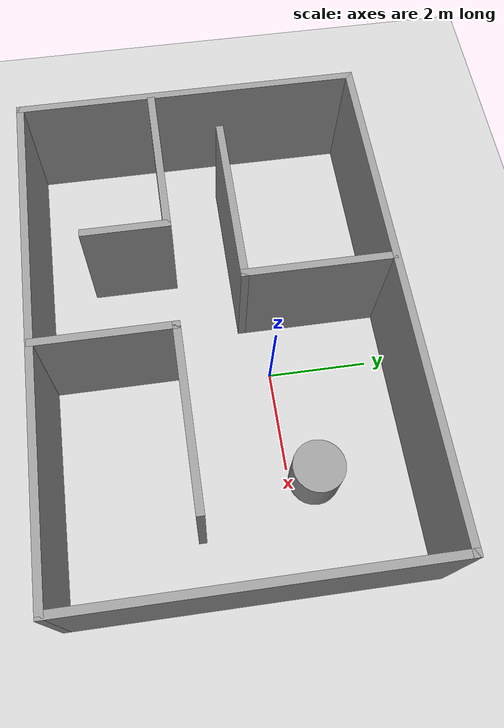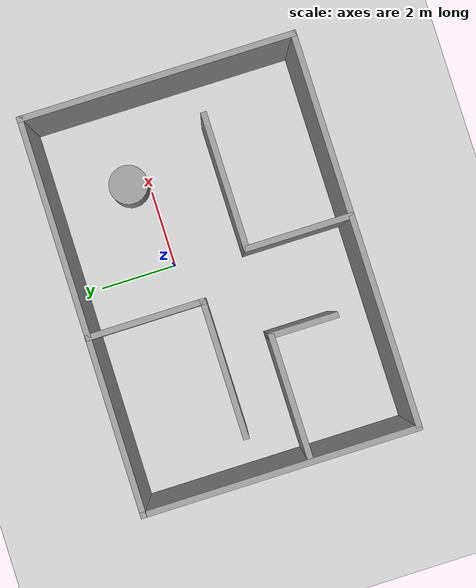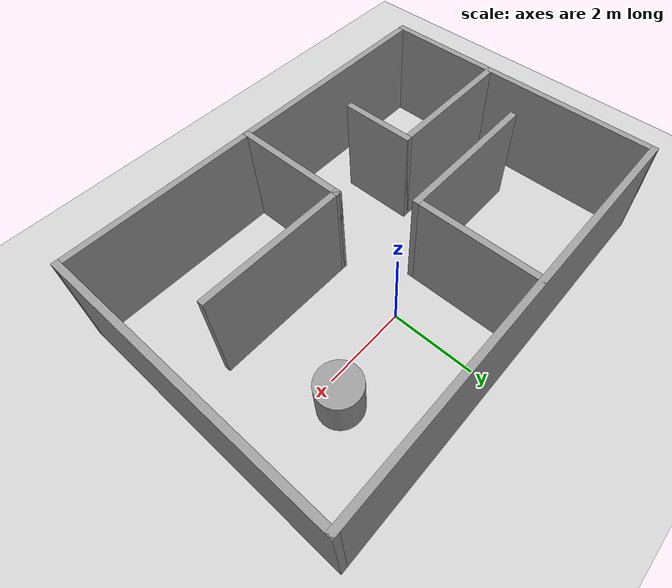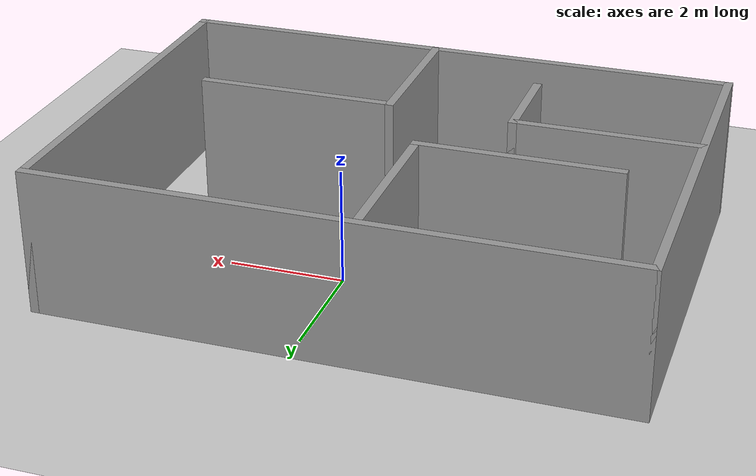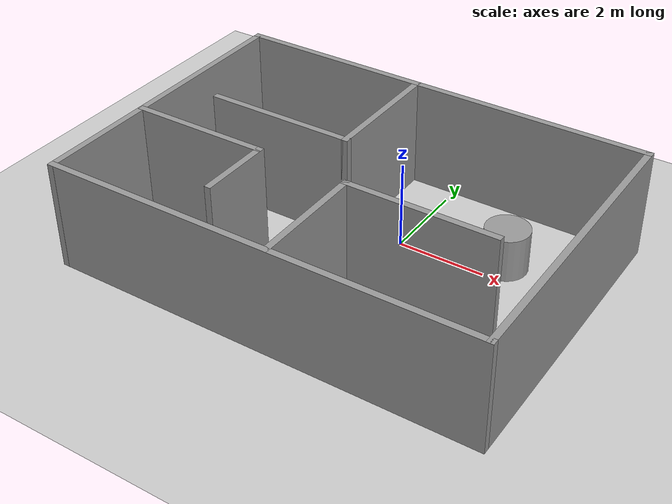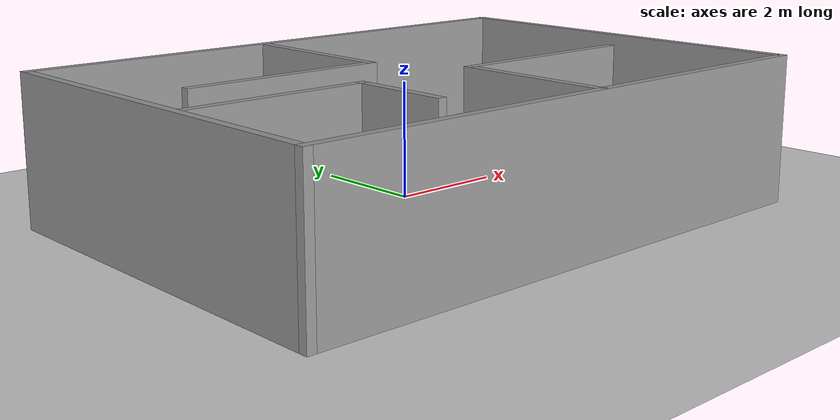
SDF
<sdf version="1.7">
 <world name="default">
  <light name="sun" type="directional">
   <pose>0 0 10 0 -0 0</pose>
   <diffuse>0.8 0.8 0.8 1</diffuse>
   <specular>0.2 0.2 0.2 1</specular>
   <attenuation>
    <range>1000</range>
    <constant>0.9</constant>
    <linear>0.01</linear>
    <quadratic>0.001</quadratic>
   </attenuation>
   <direction>-0.5 0.1 -0.9</direction>
   <spot><inner_angle>0</inner_angle><outer_angle>0</outer_angle><falloff>0</falloff></spot>
  </light>
  <model name="ground_plane">
   <static>1</static>
   <link name="link">
    <collision name="collision">
     <geometry><plane><normal>0 0 1</normal><size>100 100</size></plane></geometry>
     <surface><friction><ode><mu>100</mu><mu2>50</mu2></ode></friction></surface>
    </collision>
    <visual name="visual">
     <cast_shadows>0</cast_shadows>
     <geometry><plane><normal>0 0 1</normal><size>100 100</size></plane></geometry>
     <material>
      <script><uri>file://media/materials/scripts/gazebo.material</uri><name>Gazebo/Grey</name></script>
     </material>
    </visual>
   </link>
  </model>
  <gravity>0 0 -9.8</gravity>
  <magnetic_field>6e-06 2.3e-05 -4.2e-05</magnetic_field>
  <atmosphere type="adiabatic"/>
  <physics type="ode">
   <max_step_size>0.001</max_step_size>
   <real_time_factor>1</real_time_factor>
   <real_time_update_rate>1000</real_time_update_rate>
  </physics>
  <scene><ambient>0.4 0.4 0.4 1</ambient><background>0.7 0.7 0.7 1</background><shadows>1</shadows></scene>
  <audio><device>default</device></audio>
  <spherical_coordinates>
   <surface_model>EARTH_WGS84</surface_model>
   <latitude_deg>0</latitude_deg>
   <longitude_deg>0</longitude_deg>
   <elevation>0</elevation>
   <heading_deg>0</heading_deg>
  </spherical_coordinates>
  <model name="room">
   <pose>-0.5832 -0.575494 0 0 -0 0</pose>
   <link name="Wall_0">
    <collision name="Wall_0_Collision">
     <geometry><box><size>10 0.15 2.5</size></box></geometry>
     <pose>0 0 1.25 0 -0 0</pose>
    </collision>
    <visual name="Wall_0_Visual">
     <pose>0 0 1.25 0 -0 0</pose>
     <geometry><box><size>10 0.15 2.5</size></box></geometry>
     <material>
      <script><uri>file://media/materials/scripts/gazebo.material</uri><name>Gazebo/Grey</name></script>
      <ambient>1 1 1 1</ambient>
     </material>
     <meta><layer>0</layer></meta>
    </visual>
    <pose>-0 3.0075 0 0 -0 0</pose>
   </link>
   <link name="Wall_1">
    <collision name="Wall_1_Collision">
     <geometry><box><size>7 0.15 2.5</size></box></geometry>
     <pose>0 0 1.25 0 -0 0</pose>
    </collision>
    <visual name="Wall_1_Visual">
     <pose>0 0 1.25 0 -0 0</pose>
     <geometry><box><size>7 0.15 2.5</size></box></geometry>
     <material>
      <script><uri>file://media/materials/scripts/gazebo.material</uri><name>Gazebo/Grey</name></script>
      <ambient>1 1 1 1</ambient>
     </material>
     <meta><layer>0</layer></meta>
    </visual>
    <pose>4.925 -0.4175 0 0 -0 -1.5708</pose>
   </link>
   <link name="Wall_10">
    <collision name="Wall_10_Collision">
     <geometry><box><size>1.75 0.15 2.5</size></box></geometry>
     <pose>0 0 1.25 0 -0 0</pose>
    </collision>
    <visual name="Wall_10_Visual">
     <pose>0 0 1.25 0 -0 0</pose>
     <geometry><box><size>1.75 0.15 2.5</size></box></geometry>
     <material>
      <script><uri>file://media/materials/scripts/gazebo.material</uri><name>Gazebo/Grey</name></script>
      <ambient>1 1 1 1</ambient>
     </material>
     <meta><layer>0</layer></meta>
    </visual>
    <pose>-1.79975 -1.95899 0 0 -0 -1.5708</pose>
   </link>
   <link name="Wall_12">
    <collision name="Wall_12_Collision">
     <geometry><box><size>2.75 0.15 2.5</size></box></geometry>
     <pose>0 0 1.25 0 -0 0</pose>
    </collision>
    <visual name="Wall_12_Visual">
     <pose>0 0 1.25 0 -0 0</pose>
     <geometry><box><size>2.75 0.15 2.5</size></box></geometry>
     <material>
      <script><uri>file://media/materials/scripts/gazebo.material</uri><name>Gazebo/Grey</name></script>
      <ambient>1 1 1 1</ambient>
     </material>
     <meta><layer>0</layer></meta>
    </visual>
    <pose>0.347267 -2.52052 0 0 -0 1.5708</pose>
   </link>
   <link name="Wall_13">
    <collision name="Wall_13_Collision">
     <geometry><box><size>0.15 0.15 2.5</size></box></geometry>
     <pose>0 0 1.25 0 -0 0</pose>
    </collision>
    <visual name="Wall_13_Visual">
     <pose>0 0 1.25 0 -0 0</pose>
     <geometry><box><size>0.15 0.15 2.5</size></box></geometry>
     <material>
      <script><uri>file://media/materials/scripts/gazebo.material</uri><name>Gazebo/Grey</name></script>
      <ambient>1 1 1 1</ambient>
     </material>
     <meta><layer>0</layer></meta>
    </visual>
    <pose>0.347267 -1.22052 0 0 -0 0</pose>
   </link>
   <link name="Wall_14">
    <collision name="Wall_14_Collision">
     <geometry><box><size>3.5 0.15 2.5</size></box></geometry>
     <pose>0 0 1.25 0 -0 0</pose>
    </collision>
    <visual name="Wall_14_Visual">
     <pose>0 0 1.25 0 -0 0</pose>
     <geometry><box><size>3.5 0.15 2.5</size></box></geometry>
     <material>
      <script><uri>file://media/materials/scripts/gazebo.material</uri><name>Gazebo/Grey</name></script>
      <ambient>1 1 1 1</ambient>
     </material>
     <meta><layer>0</layer></meta>
    </visual>
    <pose>2.02227 -1.22052 0 0 -0 0</pose>
   </link>
   <link name="Wall_2">
    <collision name="Wall_2_Collision">
     <geometry><box><size>10 0.15 2.5</size></box></geometry>
     <pose>0 0 1.25 0 -0 0</pose>
    </collision>
    <visual name="Wall_2_Visual">
     <pose>0 0 1.25 0 -0 0</pose>
     <geometry><box><size>10 0.15 2.5</size></box></geometry>
     <material>
      <script><uri>file://media/materials/scripts/gazebo.material</uri><name>Gazebo/Grey</name></script>
      <ambient>1 1 1 1</ambient>
     </material>
     <meta><layer>0</layer></meta>
    </visual>
    <pose>-0 -3.8425 0 0 -0 3.14159</pose>
   </link>
   <link name="Wall_3">
    <collision name="Wall_3_Collision">
     <geometry><box><size>7 0.15 2.5</size></box></geometry>
     <pose>0 0 1.25 0 -0 0</pose>
    </collision>
    <visual name="Wall_3_Visual">
     <pose>0 0 1.25 0 -0 0</pose>
     <geometry><box><size>7 0.15 2.5</size></box></geometry>
     <material>
      <script><uri>file://media/materials/scripts/gazebo.material</uri><name>Gazebo/Grey</name></script>
      <ambient>1 1 1 1</ambient>
     </material>
     <meta><layer>0</layer></meta>
    </visual>
    <pose>-4.925 -0.4175 0 0 -0 1.5708</pose>
   </link>
   <link name="Wall_6">
    <collision name="Wall_6_Collision">
     <geometry><box><size>3 0.15 2.5</size></box></geometry>
     <pose>0 0 1.25 0 -0 0</pose>
    </collision>
    <visual name="Wall_6_Visual">
     <pose>0 0 1.25 0 -0 0</pose>
     <geometry><box><size>3 0.15 2.5</size></box></geometry>
     <material>
      <script><uri>file://media/materials/scripts/gazebo.material</uri><name>Gazebo/Grey</name></script>
      <ambient>1 1 1 1</ambient>
     </material>
     <meta><layer>0</layer></meta>
    </visual>
    <pose>-0.53484 1.568 0 0 -0 -1.5708</pose>
   </link>
   <link name="Wall_7">
    <collision name="Wall_7_Collision">
     <geometry><box><size>3.5 0.15 2.5</size></box></geometry>
     <pose>0 0 1.25 0 -0 0</pose>
    </collision>
    <visual name="Wall_7_Visual">
     <pose>0 0 1.25 0 -0 0</pose>
     <geometry><box><size>3.5 0.15 2.5</size></box></geometry>
     <material>
      <script><uri>file://media/materials/scripts/gazebo.material</uri><name>Gazebo/Grey</name></script>
      <ambient>1 1 1 1</ambient>
     </material>
     <meta><layer>0</layer></meta>
    </visual>
    <pose>-2.20984 0.143003 0 0 -0 3.14159</pose>
   </link>
   <link name="Wall_9">
    <collision name="Wall_9_Collision">
     <geometry><box><size>3.25 0.15 2.5</size></box></geometry>
     <pose>0 0 1.25 0 -0 0</pose>
    </collision>
    <visual name="Wall_9_Visual">
     <pose>0 0 1.25 0 -0 0</pose>
     <geometry><box><size>3.25 0.15 2.5</size></box></geometry>
     <material>
      <script><uri>file://media/materials/scripts/gazebo.material</uri><name>Gazebo/Grey</name></script>
      <ambient>1 1 1 1</ambient>
     </material>
     <meta><layer>0</layer></meta>
    </visual>
    <pose>-3.34975 -1.15899 0 0 -0 0</pose>
   </link>
   <static>1</static>
  </model>
  <model name="unit_cylinder">
   <pose>2.25915 0.496393 0.499997 3e-06 4e-06 -0</pose>
   <link name="link">
    <inertial>
     <mass>1</mass>
     <inertia><ixx>0.145833</ixx><ixy>0</ixy><ixz>0</ixz><iyy>0.145833</iyy><iyz>0</iyz><izz>0.125</izz></inertia>
    </inertial>
    <collision name="collision">
     <geometry><cylinder><radius>0.5</radius><length>1</length></cylinder></geometry>
    </collision>
    <visual name="visual">
     <geometry><cylinder><radius>0.5</radius><length>1</length></cylinder></geometry>
     <material>
      <script><name>Gazebo/Grey</name><uri>file://media/materials/scripts/gazebo.material</uri></script>
     </material>
    </visual>
   </link>
  </model>
 </world>
</sdf>
